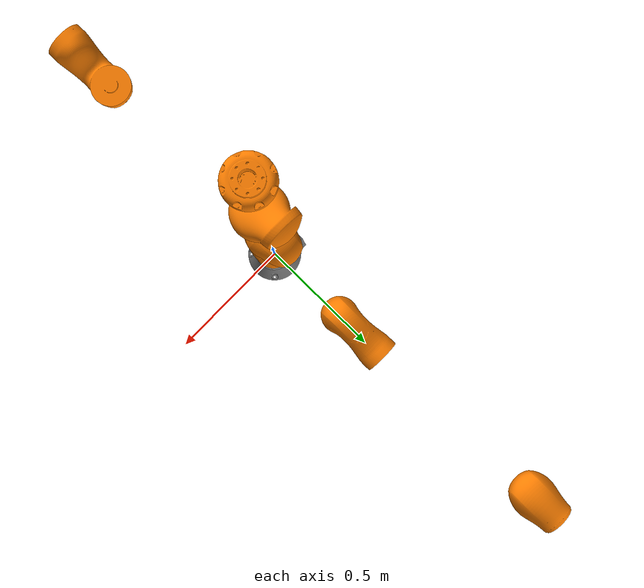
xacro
<?xml version="1.0"?>

<robot xmlns:xacro="http://www.ros.org/wiki/xacro" name="iiwa7">

    <link name="world"/>

    <xacro:include filename="iiwa7_property.xacro"/>
    <xacro:include filename="iiwa7_material.xacro"/>

    <xacro:include filename="iiwa7_link.xacro"/>
    <xacro:include filename="iiwa7_joint.xacro"/>

    <!-- Control -->
    <xacro:include filename="iiwa7_control.xacro"/>
    <!-- Gazebo -->
    <xacro:include filename="iiwa7_gazebo.xacro"/>

</robot>

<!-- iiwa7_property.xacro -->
<robot xmlns:xacro="http://www.ros.org/wiki/xacro">
    <!-- Переменные -->

    <xacro:property name="mesh_link" value="file://$(find robot_control)/meshes/iiwa7/visual"/>
    <xacro:property name="mesh_collision" value="file://$(find robot_control)/meshes/iiwa7/collision"/>

    <xacro:property name="size" value="1 1 1"/>
    <xacro:property name="effort" value="300"/>
    <xacro:property name="velocity" value="10"/>

    <xacro:macro name="iiwa_transmission" params="number">
        <transmission name="$tran_${number}">
            <plugin>transmission_interface/SimpleTransmission</plugin>
            <joint name="$joint_${number}" role="joint1">
                <mechanical_reduction>1</mechanical_reduction>
            </joint>
            <actuator name="$motor_${number}" role="actuator1" />
        </transmission>
    </xacro:macro>

    <xacro:macro name="contact_sensor_link" params="number">
        <gazebo reference="link_${number}">
            <sensor name='sensor_contact_link_${number}' type='contact'>
                <contact>
                    <collision>link_${number}_collision</collision>
                    <topic>/iiwa7/sensors/contacts/link_${number}</topic>
                </contact>
            </sensor>
        </gazebo>
    </xacro:macro>

    <xacro:macro name="imu_sensor_link" params="number">
        <gazebo reference="link_${number}">
            <sensor name="iiwa_imu_link_${number}" type="imu">
                <always_on>true</always_on>
                <update_rate>200</update_rate>
                <topic>/iiwa7/sensors/imu/link_${number}</topic>
              </sensor>
        </gazebo>
    </xacro:macro>

</robot>

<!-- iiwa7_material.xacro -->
<robot xmlns:xacro="http://www.ros.org/wiki/xacro">
    <!-- Материалы -->
    <material name="grey">
        <color rgba="0.5 0.5 0.5 1"/>
    </material>

    <material name="orange">
        <color rgba="1 0.5 0 1"/>
    </material>

    <material name="white">
        <color rgba="1 1 1 1.0"/>
    </material>
</robot>

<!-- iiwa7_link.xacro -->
<robot xmlns:xacro="http://www.ros.org/wiki/xacro">

    <!-- Ссылки -->
    <link name="link_0">

        <inertial>
            <origin rpy="0 0 0" xyz="-0.1 0 0.07"/>
            <mass value="5"/>
            <inertia ixx="0.035" ixy="0" ixz="0" iyy="0.035" iyz="0" izz="0.012"/>
        </inertial>

        <visual>
            <origin xyz="0.0 0.0 0.0" rpy="0.0 0.0 0.0"/>
            <geometry>
                <mesh filename="${mesh_link}/link_0.stl" scale="${size}"/>
            </geometry>
            <material name="grey"/>
        </visual>

        <collision>
            <origin xyz="0.0 0.0 0.0" rpy="0.0 0.0 0.0"/>
            <geometry>
                <mesh filename="${mesh_link}/link_0.stl" scale="${size}"/>
            </geometry>

            <material name="grey"/>
        </collision>

    </link>

    <link name="link_1">

        <inertial>
            <origin rpy="0 0 0" xyz="0 -0.03 0.12"/>
            <mass value="3.4525"/>
            <inertia ixx="0.02183" ixy="0" ixz="0" iyy="0.007703" iyz="-0.003887" izz="0.02083"/>
        </inertial>

        <visual>
            <origin xyz="0.0 0.0 0.0" rpy="0 0 0"/>
            <geometry>
                <mesh filename="${mesh_link}/link_1.stl" scale="${size}"/>
            </geometry>
            <material name="orange"/>
        </visual>

        <collision>
            <origin xyz="0.0 0.0 0.0" rpy="0.0 0.0 0.0"/>
            <geometry>
                <mesh filename="${mesh_link}/link_1.stl" scale="${size}"/>
            </geometry>
            <material name="orange"/>
        </collision>

    </link>

    <link name="link_2">
        <inertial>
            <origin rpy="0 0 0" xyz="0.0003 0.059 0.042"/>
            <mass value="3.4821"/>
            <inertia ixx="0.02076" ixy="0" ixz="-0.003626" iyy="0.02179" iyz="0" izz="0.00779"/>
        </inertial>

        <visual>
            <origin xyz="0.0 0.0 0.0" rpy="0 0 0"/>
            <geometry>
                <mesh filename="${mesh_link}/link_2.stl" scale="${size}"/>
            </geometry>
            <material name="orange"/>
        </visual>

        <collision>
            <origin xyz="0.0 0.0 0.0" rpy="0.0 0.0 0.0"/>
            <geometry>
                <mesh filename="${mesh_link}/link_2.stl" scale="${size}"/>
            </geometry>
            <material name="orange"/>
        </collision>
    </link>

    <link name="link_3">
        <inertial>
            <origin rpy="0 0 0" xyz="0 0.03 0.13"/>
            <mass value="4.05623"/>
            <inertia ixx="0.03204" ixy="0" ixz="0" iyy="0.00972" iyz="0.006227" izz="0.03042"/>
        </inertial>

        <visual>
            <origin xyz="0.0 0.0 -0.026" rpy="0 0 0"/>
            <geometry>
                <mesh filename="${mesh_link}/link_3.stl" scale="${size}"/>
            </geometry>
            <material name="orange"/>
        </visual>

        <collision>
            <origin xyz="0.0 0.0 -0.026" rpy="0.0 0.0 0.0"/>
            <geometry>
                <mesh filename="${mesh_link}/link_3.stl" scale="${size}"/>
            </geometry>
            <material name="orange"/>
        </collision>
    </link>

    <link name="link_4">
        <inertial>
            <origin rpy="0 0 0" xyz="0 0.067 0.034"/>
            <mass value="3.4822"/>
            <inertia ixx="0.02178" ixy="0" ixz="0" iyy="0.02075" iyz="-0.003625" izz="0.007785"/>
        </inertial>

        <visual>
            <origin xyz="0.0 0.0 0" rpy="0 0 0"/>
            <geometry>
                <mesh filename="${mesh_link}/link_4.stl" scale="${size}"/>
            </geometry>
            <material name="orange"/>
        </visual>

        <collision>
            <origin xyz="0.0 0.0 0.0" rpy="0.0 0.0 0.0"/>
            <geometry>
                <mesh filename="${mesh_link}/link_4.stl" scale="${size}"/>
            </geometry>
            <material name="orange"/>
        </collision>
    </link>

    <link name="link_5">

        <inertial>
            <origin rpy="0 0 0" xyz="0.0001 0.021 0.076"/>
            <mass value="2.1633"/>
            <inertia ixx="0.01287" ixy="0" ixz="0" iyy="0.005708" iyz="-0.003946" izz="0.01112"/>
        </inertial>

        <visual>
            <origin xyz="0.0 0.0 -0.026" rpy="0 0 0"/>
            <geometry>
                <mesh filename="${mesh_link}/link_5.stl" scale="${size}"/>
            </geometry>
            <material name="orange"/>
        </visual>

        <collision>
            <origin xyz="0.0 0.0 -0.026" rpy="0.0 0.0 0.0"/>
            <geometry>
                <mesh filename="${mesh_link}/link_5.stl" scale="${size}"/>
            </geometry>
            <material name="orange"/>
        </collision>
    </link>

    <link name="link_6">

        <!-- Инерция -->
        <inertial>
            <origin rpy="0 0 0" xyz="0 0.0006 0.0004"/>
            <mass value="2.3466"/>
            <inertia ixx="0.006509" ixy="0" ixz="0" iyy="0.006259" iyz="0.00031891" izz="0.004527"/>
        </inertial>

        <!-- Визуализация -->
        <visual>
            <origin xyz="0.0 0.0 0" rpy="0 0 0"/>
            <geometry>
                <mesh filename="${mesh_link}/link_6.stl" scale="${size}"/>
            </geometry>
            <material name="orange"/>
        </visual>

        <!-- Коллизия -->
        <collision>
            <origin xyz="0.0 0.0 0.0" rpy="0.0 0.0 0.0"/>
            <geometry>
                <mesh filename="${mesh_link}/link_6.stl" scale="${size}"/>
            </geometry>
            <material name="orange"/>
        </collision>
    </link>

    <link name="link_7">
        <!-- Инерция -->
        <inertial>
            <origin rpy="0 0 0" xyz="0 0 0.02"/>
            <mass value="3.129"/>
            <inertia ixx="0.01464" ixy="0.0005912" ixz="0" iyy="0.01465" iyz="0" izz="0.002872"/>
        </inertial>

        <!-- Визуализация -->
        <visual>
            <origin xyz="0.0 0.0 -0.0005" rpy="0 0 0"/>
            <geometry>
                <mesh filename="${mesh_link}/link_7.stl" scale="${size}"/>
            </geometry>
            <material name="orange"/>
        </visual>

        <!-- Коллизия -->
        <collision>
            <origin xyz="0.0 0.0 -0.0005" rpy="0.0 0.0 0.0"/>
            <geometry>
                <mesh filename="${mesh_link}/link_7.stl" scale="${size}"/>
            </geometry>
            <material name="orange"/>
        </collision>
    </link>

    <link name="link_ee"/>

</robot>

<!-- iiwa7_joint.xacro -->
<robot xmlns:xacro="http://www.ros.org/wiki/xacro">

    <!-- Соединения -->
    <joint name="virtual_joint" type="fixed">
        <parent link="world"/>
        <child link="link_0"/>
        <origin xyz="0.0 0.0 0.0" rpy="0 0.0 0.0"/>
    </joint>

    <joint name="joint_1" type="revolute">
        <parent link="link_0"/>
        <child link="link_1"/>
        <axis xyz="0 0 1"/>
        <limit lower="${-170 * pi / 180}" upper="${170 * pi / 180}" velocity="${velocity}" effort="${effort}"/>
        <origin xyz="0 0 0.15" rpy="0 0 0"/>
    </joint>

    <joint name="joint_2" type="revolute">
        <parent link="link_1"/>
        <child link="link_2"/>
        <axis xyz="0 0 1"/>
        <limit lower="${-120 * pi / 180}" upper="${120 * pi / 180}" velocity="${velocity}" effort="${effort}"/>
        <origin xyz="0 0 0.185" rpy="${pi/2} 0 ${pi}"/>
    </joint>

    <joint name="joint_3" type="revolute">
        <parent link="link_2"/>
        <child link="link_3"/>
        <axis xyz="0 0 1"/>
        <limit lower="${-170 * pi / 180}" upper="${170 * pi / 180}" velocity="${velocity}" effort="${effort}"/>
        <origin xyz="0 0.21 0" rpy="${pi/2} 0 ${pi}"/>
    </joint>

    <joint name="joint_4" type="revolute">
        <parent link="link_3"/>
        <child link="link_4"/>
        <axis xyz="0 0 1"/>
        <limit lower="${-120 * pi / 180}" upper="${120 * pi / 180}" velocity="${velocity}" effort="${effort}"/>
        <origin xyz="0 0 0.19" rpy="${pi/2} 0 0"/>
    </joint>

    <joint name="joint_5" type="revolute">
        <parent link="link_4"/>
        <child link="link_5"/>
        <axis xyz="0 0 1"/>
        <limit lower="${-170 * pi / 180}" upper="${170 * pi / 180}" velocity="${velocity}" effort="${effort}"/>
        <origin xyz="0 0.21 0" rpy="${-pi/2} ${pi} 0"/>
    </joint>

    <joint name="joint_6" type="revolute">
        <parent link="link_5"/>
        <child link="link_6"/>
        <axis xyz="0 0 1"/>
        <limit lower="${-120 * pi / 180}" upper="${120 * pi / 180}" velocity="${velocity}" effort="${effort}"/>
        <origin xyz="0 0.06070 0.19" rpy="${pi/2} 0 0"/>
    </joint>

    <joint name="joint_7" type="revolute">
        <parent link="link_6"/>
        <child link="link_7"/>
        <axis xyz="0 0 1"/>
        <limit lower="${-175 * pi / 180}" upper="${175 * pi / 180}" velocity="${velocity}" effort="${effort}"/>
        <origin xyz="0 0.081 0.06070" rpy="${-pi/2} ${pi} 0"/>
    </joint>

    <joint name="iiwa_joint_ee" type="fixed">
        <parent link="link_7"/>
        <child link="link_ee"/>
        <origin rpy="0 ${pi/2} 0" xyz="0 0 0.045"/>
    </joint>

    <xacro:iiwa_transmission number="1"/>
    <xacro:iiwa_transmission number="2"/>
    <xacro:iiwa_transmission number="3"/>
    <xacro:iiwa_transmission number="4"/>
    <xacro:iiwa_transmission number="5"/>
    <xacro:iiwa_transmission number="6"/>
    <xacro:iiwa_transmission number="7"/>

</robot>
